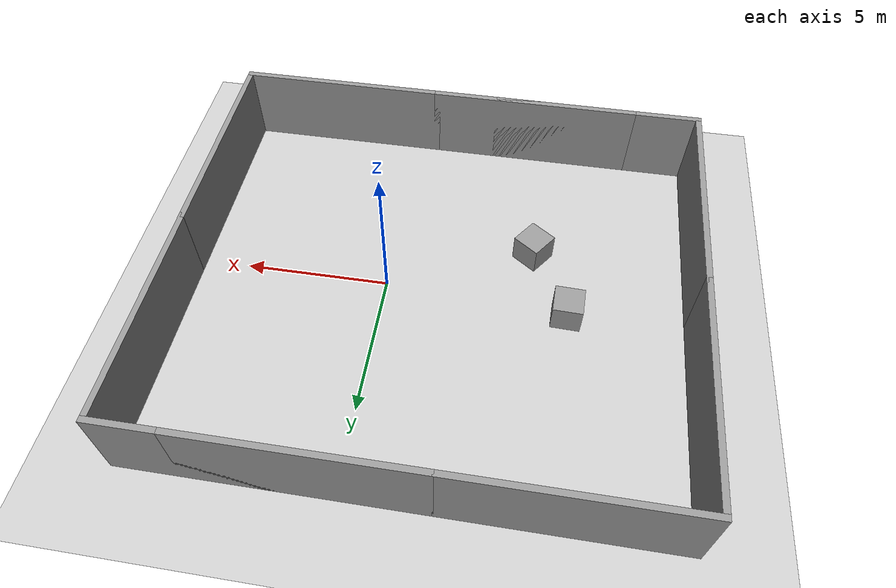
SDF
<sdf version="1.7">
 <world name="world">
  <light name="sun" type="directional">
   <pose>0 0 10 0 -0 0</pose>
   <diffuse>0.8 0.8 0.8 1</diffuse>
   <specular>0.2 0.2 0.2 1</specular>
   <attenuation>
    <range>1000</range>
    <constant>0.9</constant>
    <linear>0.01</linear>
    <quadratic>0.001</quadratic>
   </attenuation>
   <direction>-0.5 0.1 -0.9</direction>
   <spot><inner_angle>0</inner_angle><outer_angle>0</outer_angle><falloff>0</falloff></spot>
  </light>
  <model name="ground_plane">
   <static>1</static>
   <link name="link">
    <collision name="collision">
     <geometry><plane><normal>0 0 1</normal><size>100 100</size></plane></geometry>
     <surface>
      <contact><collide_bitmask>65535</collide_bitmask></contact>
      <friction><ode><mu>100</mu><mu2>50</mu2></ode></friction>
     </surface>
    </collision>
    <visual name="visual">
     <cast_shadows>0</cast_shadows>
     <geometry><plane><normal>0 0 1</normal><size>100 100</size></plane></geometry>
     <material>
      <script><uri>file://media/materials/scripts/gazebo.material</uri><name>Gazebo/Grey</name></script>
     </material>
    </visual>
   </link>
  </model>
  <physics type="ode">
   <real_time_update_rate>1000</real_time_update_rate>
   <max_step_size>0.001</max_step_size>
   <real_time_factor>1</real_time_factor>
   <ode>
    <solver>
     <type>quick</type>
     <iters>150</iters>
     <precon_iters>0</precon_iters>
     <sor>1.4</sor>
     <use_dynamic_moi_rescaling>1</use_dynamic_moi_rescaling>
    </solver>
    <constraints>
     <cfm>1e-05</cfm>
     <erp>0.2</erp>
     <contact_max_correcting_vel>2000</contact_max_correcting_vel>
     <contact_surface_layer>0.01</contact_surface_layer>
    </constraints>
   </ode>
  </physics>
  <scene><ambient>0.4 0.4 0.4 1</ambient><background>0.7 0.7 0.7 1</background><shadows>1</shadows></scene>
  <spherical_coordinates>
   <surface_model>EARTH_WGS84</surface_model>
   <latitude_deg>0</latitude_deg>
   <longitude_deg>0</longitude_deg>
   <elevation>0</elevation>
   <heading_deg>0</heading_deg>
  </spherical_coordinates>
  <model name="grey_wall">
   <static>1</static>
   <link name="link">
    <pose>0 0 1.4 0 -0 0</pose>
    <collision name="collision"><geometry><box><size>7.5 0.2 2.8</size></box></geometry></collision>
    <visual name="visual">
     <cast_shadows>0</cast_shadows>
     <geometry><box><size>7.5 0.2 2.8</size></box></geometry>
     <material>
      <script>
       <uri>model://grey_wall/materials/scripts</uri>
       <uri>model://grey_wall/materials/textures</uri>
       <name>vrc/grey_wall</name>
      </script>
     </material>
    </visual>
   </link>
   <pose>3 -7.12 0 0 -0 0</pose>
  </model>
  <model name="grey_wall_0">
   <static>1</static>
   <link name="link">
    <pose>0 0 1.4 0 -0 0</pose>
    <collision name="collision"><geometry><box><size>7.5 0.2 2.8</size></box></geometry></collision>
    <visual name="visual">
     <cast_shadows>0</cast_shadows>
     <geometry><box><size>7.5 0.2 2.8</size></box></geometry>
     <material>
      <script>
       <uri>model://grey_wall/materials/scripts</uri>
       <uri>model://grey_wall/materials/textures</uri>
       <name>vrc/grey_wall</name>
      </script>
     </material>
    </visual>
   </link>
   <pose>-4.3 -7.12 0 0 -0 0</pose>
  </model>
  <model name="grey_wall_0_clone">
   <static>1</static>
   <link name="link">
    <pose>0 0 1.4 0 -0 0</pose>
    <collision name="collision"><geometry><box><size>7.5 0.2 2.8</size></box></geometry></collision>
    <visual name="visual">
     <cast_shadows>0</cast_shadows>
     <geometry><box><size>7.5 0.2 2.8</size></box></geometry>
     <material>
      <script>
       <uri>model://grey_wall/materials/scripts</uri>
       <uri>model://grey_wall/materials/textures</uri>
       <name>vrc/grey_wall</name>
      </script>
     </material>
    </visual>
   </link>
   <pose>-6.65 -7.12 0 0 -0 0</pose>
  </model>
  <model name="grey_wall_2_clone_clone_0">
   <static>1</static>
   <link name="link">
    <pose>0 0 1.4 0 -0 0</pose>
    <collision name="collision"><geometry><box><size>7.5 0.2 2.8</size></box></geometry></collision>
    <visual name="visual">
     <cast_shadows>0</cast_shadows>
     <geometry><box><size>7.5 0.2 2.8</size></box></geometry>
     <material>
      <script>
       <uri>model://grey_wall/materials/scripts</uri>
       <uri>model://grey_wall/materials/textures</uri>
       <name>vrc/grey_wall</name>
      </script>
     </material>
    </visual>
   </link>
   <pose>-10.3 -3.3 0 0 -0 1.5708</pose>
  </model>
  <model name="grey_wall_2_clone_clone_1">
   <static>1</static>
   <link name="link">
    <pose>0 0 1.4 0 -0 0</pose>
    <collision name="collision"><geometry><box><size>7.5 0.2 2.8</size></box></geometry></collision>
    <visual name="visual">
     <cast_shadows>0</cast_shadows>
     <geometry><box><size>7.5 0.2 2.8</size></box></geometry>
     <material>
      <script>
       <uri>model://grey_wall/materials/scripts</uri>
       <uri>model://grey_wall/materials/textures</uri>
       <name>vrc/grey_wall</name>
      </script>
     </material>
    </visual>
   </link>
   <pose>-10.3 4 0 0 -0 1.5708</pose>
  </model>
  <gravity>0 0 -9.8</gravity>
  <magnetic_field>6e-06 2.3e-05 -4.2e-05</magnetic_field>
  <atmosphere type="adiabatic"/>
  <model name="grey_wall_0_clone_clone">
   <static>1</static>
   <link name="link">
    <pose>0 0 1.4 0 -0 0</pose>
    <collision name="collision"><geometry><box><size>7.5 0.2 2.8</size></box></geometry></collision>
    <visual name="visual">
     <cast_shadows>0</cast_shadows>
     <geometry><box><size>7.5 0.2 2.8</size></box></geometry>
     <material>
      <script>
       <uri>model://grey_wall/materials/scripts</uri>
       <uri>model://grey_wall/materials/textures</uri>
       <name>vrc/grey_wall</name>
      </script>
     </material>
    </visual>
   </link>
   <pose>-6.65 7.85 0 0 -0 0</pose>
  </model>
  <model name="grey_wall_0_clone_clone_0">
   <static>1</static>
   <link name="link">
    <pose>0 0 1.4 0 -0 0</pose>
    <collision name="collision"><geometry><box><size>7.5 0.2 2.8</size></box></geometry></collision>
    <visual name="visual">
     <cast_shadows>0</cast_shadows>
     <geometry><box><size>7.5 0.2 2.8</size></box></geometry>
     <material>
      <script>
       <uri>model://grey_wall/materials/scripts</uri>
       <uri>model://grey_wall/materials/textures</uri>
       <name>vrc/grey_wall</name>
      </script>
     </material>
    </visual>
   </link>
   <pose>0.8 7.85 0 0 -0 0</pose>
  </model>
  <model name="grey_wall_0_clone_clone_1">
   <static>1</static>
   <link name="link">
    <pose>0 0 1.4 0 -0 0</pose>
    <collision name="collision"><geometry><box><size>7.5 0.2 2.8</size></box></geometry></collision>
    <visual name="visual">
     <cast_shadows>0</cast_shadows>
     <geometry><box><size>7.5 0.2 2.8</size></box></geometry>
     <material>
      <script>
       <uri>model://grey_wall/materials/scripts</uri>
       <uri>model://grey_wall/materials/textures</uri>
       <name>vrc/grey_wall</name>
      </script>
     </material>
    </visual>
   </link>
   <pose>3 7.85 0 0 -0 0</pose>
  </model>
  <model name="grey_wall_2_clone_clone_0_clone_0">
   <static>1</static>
   <link name="link">
    <pose>0 0 1.4 0 -0 0</pose>
    <collision name="collision"><geometry><box><size>7.5 0.2 2.8</size></box></geometry></collision>
    <visual name="visual">
     <cast_shadows>0</cast_shadows>
     <geometry><box><size>7.5 0.2 2.8</size></box></geometry>
     <material>
      <script>
       <uri>model://grey_wall/materials/scripts</uri>
       <uri>model://grey_wall/materials/textures</uri>
       <name>vrc/grey_wall</name>
      </script>
     </material>
    </visual>
   </link>
   <pose>6.65 4 0 0 -0 1.5708</pose>
  </model>
  <model name="grey_wall_2_clone_clone_0_clone">
   <static>1</static>
   <link name="link">
    <pose>0 0 1.4 0 -0 0</pose>
    <collision name="collision"><geometry><box><size>7.5 0.2 2.8</size></box></geometry></collision>
    <visual name="visual">
     <cast_shadows>0</cast_shadows>
     <geometry><box><size>7.5 0.2 2.8</size></box></geometry>
     <material>
      <script>
       <uri>model://grey_wall/materials/scripts</uri>
       <uri>model://grey_wall/materials/textures</uri>
       <name>vrc/grey_wall</name>
      </script>
     </material>
    </visual>
   </link>
   <pose>6.65 -3.3 0 0 -0 1.5708</pose>
  </model>
  <model name="unit_box">
   <pose>-6.25767 0.440948 0.5 0 0 -0.033112</pose>
   <link name="link">
    <inertial>
     <mass>1</mass>
     <inertia>
      <ixx>0.166667</ixx>
      <ixy>0</ixy>
      <ixz>0</ixz>
      <iyy>0.166667</iyy>
      <iyz>0</iyz>
      <izz>0.166667</izz>
     </inertia>
    </inertial>
    <collision name="collision"><geometry><box><size>1 1 1</size></box></geometry></collision>
    <visual name="visual">
     <geometry><box><size>1 1 1</size></box></geometry>
     <material>
      <script><name>Gazebo/Grey</name><uri>file://media/materials/scripts/gazebo.material</uri></script>
     </material>
    </visual>
   </link>
  </model>
  <model name="unit_box_0">
   <pose>-4.91246 -2.05203 0.5 0 0 -0.620169</pose>
   <link name="link">
    <inertial>
     <mass>1</mass>
     <inertia>
      <ixx>0.166667</ixx>
      <ixy>0</ixy>
      <ixz>0</ixz>
      <iyy>0.166667</iyy>
      <iyz>0</iyz>
      <izz>0.166667</izz>
     </inertia>
    </inertial>
    <collision name="collision"><geometry><box><size>1 1 1</size></box></geometry></collision>
    <visual name="visual">
     <geometry><box><size>1 1 1</size></box></geometry>
     <material>
      <script><name>Gazebo/Grey</name><uri>file://media/materials/scripts/gazebo.material</uri></script>
     </material>
    </visual>
   </link>
  </model>
 </world>
</sdf>
